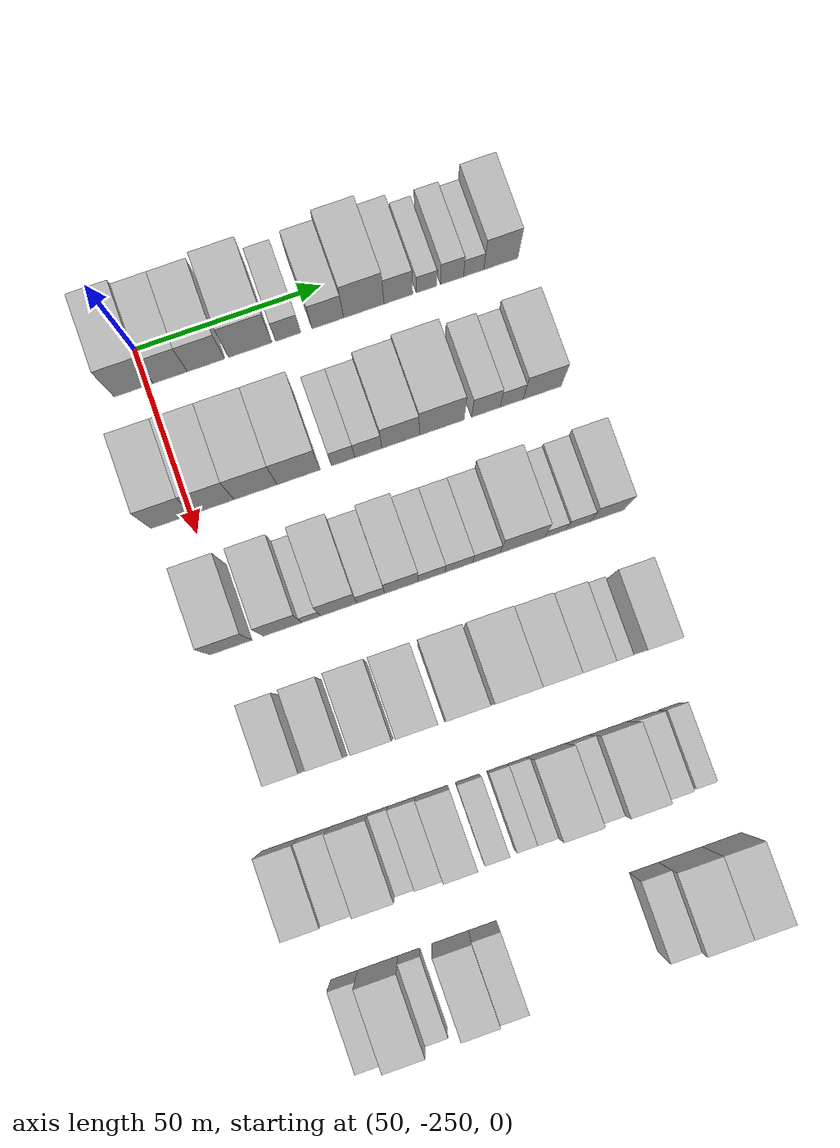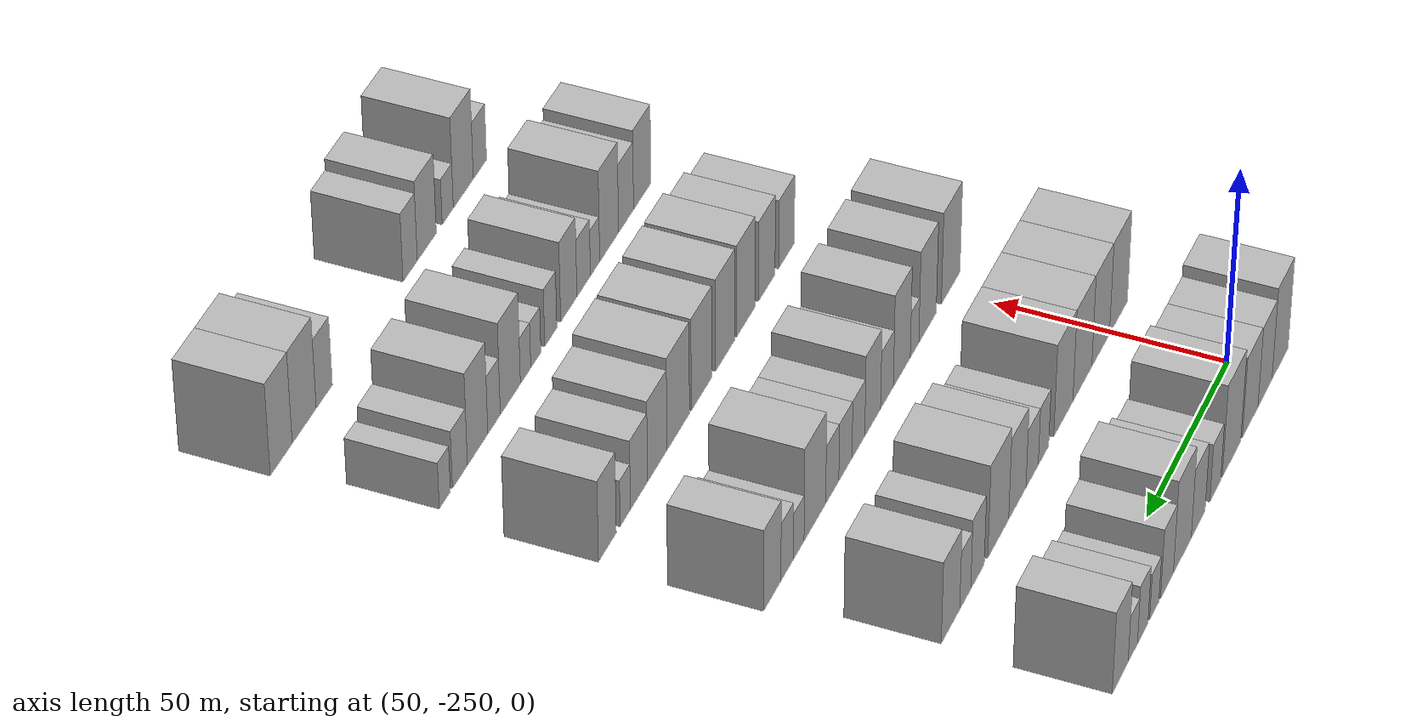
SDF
<sdf version="1.6">
 <world name="default">
  <model name="building_34">
   <static>1</static>
   <pose>50.0000 -253.4260 0 0.000000 0.000000 0.000000</pose>
   <link name="link">
    <pose>0 0 12.00 0 0 0</pose>
    <collision name="collision"><geometry><box><size>20.0000 10.4956 24.0000</size></box></geometry></collision>
    <visual name="visual">
     <cast_shadows>0</cast_shadows>
     <geometry><box><size>20.0000 10.4956 24.0000</size></box></geometry>
     <material>
      <script>
       <uri>model://HANNAS_wall/materials/scripts</uri>
       <uri>model://HANNAS_wall/materials/textures</uri>
       <name>vrc/HANNAS_wall</name>
      </script>
     </material>
    </visual>
   </link>
  </model>
  <model name="building_35">
   <static>1</static>
   <pose>50.0000 -243.6366 0 0.000000 0.000000 0.000000</pose>
   <link name="link">
    <pose>0 0 10.50 0 0 0</pose>
    <collision name="collision"><geometry><box><size>20.0000 9.0833 21.0000</size></box></geometry></collision>
    <visual name="visual">
     <cast_shadows>0</cast_shadows>
     <geometry><box><size>20.0000 9.0833 21.0000</size></box></geometry>
     <material>
      <script>
       <uri>model://HANNAS_wall/materials/scripts</uri>
       <uri>model://HANNAS_wall/materials/textures</uri>
       <name>vrc/HANNAS_wall</name>
      </script>
     </material>
    </visual>
   </link>
  </model>
  <model name="building_36">
   <static>1</static>
   <pose>50.0000 -234.0898 0 0.000000 0.000000 0.000000</pose>
   <link name="link">
    <pose>0 0 10.50 0 0 0</pose>
    <collision name="collision"><geometry><box><size>20.0000 10.0101 21.0000</size></box></geometry></collision>
    <visual name="visual">
     <cast_shadows>0</cast_shadows>
     <geometry><box><size>20.0000 10.0101 21.0000</size></box></geometry>
     <material>
      <script>
       <uri>model://HANNAS_wall/materials/scripts</uri>
       <uri>model://HANNAS_wall/materials/textures</uri>
       <name>vrc/HANNAS_wall</name>
      </script>
     </material>
    </visual>
   </link>
  </model>
  <model name="building_37">
   <static>1</static>
   <pose>50.0000 -222.2601 0 0.000000 0.000000 0.000000</pose>
   <link name="link">
    <pose>0 0 12.00 0 0 0</pose>
    <collision name="collision"><geometry><box><size>20.0000 11.6494 24.0000</size></box></geometry></collision>
    <visual name="visual">
     <cast_shadows>0</cast_shadows>
     <geometry><box><size>20.0000 11.6494 24.0000</size></box></geometry>
     <material>
      <script>
       <uri>model://HANNAS_wall/materials/scripts</uri>
       <uri>model://HANNAS_wall/materials/textures</uri>
       <name>vrc/HANNAS_wall</name>
      </script>
     </material>
    </visual>
   </link>
  </model>
  <model name="building_38">
   <static>1</static>
   <pose>50.0000 -212.0708 0 0.000000 0.000000 0.000000</pose>
   <link name="link">
    <pose>0 0 7.50 0 0 0</pose>
    <collision name="collision"><geometry><box><size>20.0000 6.7291 15.0000</size></box></geometry></collision>
    <visual name="visual">
     <cast_shadows>0</cast_shadows>
     <geometry><box><size>20.0000 6.7291 15.0000</size></box></geometry>
     <material>
      <script>
       <uri>model://HANNAS_wall/materials/scripts</uri>
       <uri>model://HANNAS_wall/materials/textures</uri>
       <name>vrc/HANNAS_wall</name>
      </script>
     </material>
    </visual>
   </link>
  </model>
  <model name="building_39">
   <static>1</static>
   <pose>50.0000 -201.4564 0 0.000000 0.000000 0.000000</pose>
   <link name="link">
    <pose>0 0 9.00 0 0 0</pose>
    <collision name="collision"><geometry><box><size>20.0000 8.4998 18.0000</size></box></geometry></collision>
    <visual name="visual">
     <cast_shadows>0</cast_shadows>
     <geometry><box><size>20.0000 8.4998 18.0000</size></box></geometry>
     <material>
      <script>
       <uri>model://HANNAS_wall/materials/scripts</uri>
       <uri>model://HANNAS_wall/materials/textures</uri>
       <name>vrc/HANNAS_wall</name>
      </script>
     </material>
    </visual>
   </link>
  </model>
  <model name="building_40">
   <static>1</static>
   <pose>50.0000 -191.7724 0 0.000000 0.000000 0.000000</pose>
   <link name="link">
    <pose>0 0 12.00 0 0 0</pose>
    <collision name="collision"><geometry><box><size>20.0000 10.8682 24.0000</size></box></geometry></collision>
    <visual name="visual">
     <cast_shadows>0</cast_shadows>
     <geometry><box><size>20.0000 10.8682 24.0000</size></box></geometry>
     <material>
      <script>
       <uri>model://HANNAS_wall/materials/scripts</uri>
       <uri>model://HANNAS_wall/materials/textures</uri>
       <name>vrc/HANNAS_wall</name>
      </script>
     </material>
    </visual>
   </link>
  </model>
  <model name="building_41">
   <static>1</static>
   <pose>50.0000 -182.4763 0 0.000000 0.000000 0.000000</pose>
   <link name="link">
    <pose>0 0 9.00 0 0 0</pose>
    <collision name="collision"><geometry><box><size>20.0000 7.7241 18.0000</size></box></geometry></collision>
    <visual name="visual">
     <cast_shadows>0</cast_shadows>
     <geometry><box><size>20.0000 7.7241 18.0000</size></box></geometry>
     <material>
      <script>
       <uri>model://HANNAS_wall/materials/scripts</uri>
       <uri>model://HANNAS_wall/materials/textures</uri>
       <name>vrc/HANNAS_wall</name>
      </script>
     </material>
    </visual>
   </link>
  </model>
  <model name="building_42">
   <static>1</static>
   <pose>50.0000 -174.8510 0 0.000000 0.000000 0.000000</pose>
   <link name="link">
    <pose>0 0 6.00 0 0 0</pose>
    <collision name="collision"><geometry><box><size>20.0000 5.5265 12.0000</size></box></geometry></collision>
    <visual name="visual">
     <cast_shadows>0</cast_shadows>
     <geometry><box><size>20.0000 5.5265 12.0000</size></box></geometry>
     <material>
      <script>
       <uri>model://HANNAS_wall/materials/scripts</uri>
       <uri>model://HANNAS_wall/materials/textures</uri>
       <name>vrc/HANNAS_wall</name>
      </script>
     </material>
    </visual>
   </link>
  </model>
  <model name="building_43">
   <static>1</static>
   <pose>50.0000 -167.9820 0 0.000000 0.000000 0.000000</pose>
   <link name="link">
    <pose>0 0 7.50 0 0 0</pose>
    <collision name="collision"><geometry><box><size>20.0000 6.2115 15.0000</size></box></geometry></collision>
    <visual name="visual">
     <cast_shadows>0</cast_shadows>
     <geometry><box><size>20.0000 6.2115 15.0000</size></box></geometry>
     <material>
      <script>
       <uri>model://HANNAS_wall/materials/scripts</uri>
       <uri>model://HANNAS_wall/materials/textures</uri>
       <name>vrc/HANNAS_wall</name>
      </script>
     </material>
    </visual>
   </link>
  </model>
  <model name="building_44">
   <static>1</static>
   <pose>50.0000 -162.1305 0 0.000000 0.000000 0.000000</pose>
   <link name="link">
    <pose>0 0 6.00 0 0 0</pose>
    <collision name="collision"><geometry><box><size>20.0000 5.4915 12.0000</size></box></geometry></collision>
    <visual name="visual">
     <cast_shadows>0</cast_shadows>
     <geometry><box><size>20.0000 5.4915 12.0000</size></box></geometry>
     <material>
      <script>
       <uri>model://HANNAS_wall/materials/scripts</uri>
       <uri>model://HANNAS_wall/materials/textures</uri>
       <name>vrc/HANNAS_wall</name>
      </script>
     </material>
    </visual>
   </link>
  </model>
  <model name="building_45">
   <static>1</static>
   <pose>50.0000 -154.7492 0 0.000000 0.000000 0.000000</pose>
   <link name="link">
    <pose>0 0 10.50 0 0 0</pose>
    <collision name="collision"><geometry><box><size>20.0000 9.2712 21.0000</size></box></geometry></collision>
    <visual name="visual">
     <cast_shadows>0</cast_shadows>
     <geometry><box><size>20.0000 9.2712 21.0000</size></box></geometry>
     <material>
      <script>
       <uri>model://HANNAS_wall/materials/scripts</uri>
       <uri>model://HANNAS_wall/materials/textures</uri>
       <name>vrc/HANNAS_wall</name>
      </script>
     </material>
    </visual>
   </link>
  </model>
  <model name="building_167">
   <static>1</static>
   <pose>85.0000 -254.9216 0 0.000000 0.000000 0.000000</pose>
   <link name="link">
    <pose>0 0 12.00 0 0 0</pose>
    <collision name="collision"><geometry><box><size>20.0000 11.1093 24.0000</size></box></geometry></collision>
    <visual name="visual">
     <cast_shadows>0</cast_shadows>
     <geometry><box><size>20.0000 11.1093 24.0000</size></box></geometry>
     <material>
      <script>
       <uri>model://HANNAS_wall/materials/scripts</uri>
       <uri>model://HANNAS_wall/materials/textures</uri>
       <name>vrc/HANNAS_wall</name>
      </script>
     </material>
    </visual>
   </link>
  </model>
  <model name="building_168">
   <static>1</static>
   <pose>85.0000 -243.9283 0 0.000000 0.000000 0.000000</pose>
   <link name="link">
    <pose>0 0 12.00 0 0 0</pose>
    <collision name="collision"><geometry><box><size>20.0000 10.8771 24.0000</size></box></geometry></collision>
    <visual name="visual">
     <cast_shadows>0</cast_shadows>
     <geometry><box><size>20.0000 10.8771 24.0000</size></box></geometry>
     <material>
      <script>
       <uri>model://HANNAS_wall/materials/scripts</uri>
       <uri>model://HANNAS_wall/materials/textures</uri>
       <name>vrc/HANNAS_wall</name>
      </script>
     </material>
    </visual>
   </link>
  </model>
  <model name="building_169">
   <static>1</static>
   <pose>85.0000 -232.7500 0 0.000000 0.000000 0.000000</pose>
   <link name="link">
    <pose>0 0 12.00 0 0 0</pose>
    <collision name="collision"><geometry><box><size>20.0000 11.4796 24.0000</size></box></geometry></collision>
    <visual name="visual">
     <cast_shadows>0</cast_shadows>
     <geometry><box><size>20.0000 11.4796 24.0000</size></box></geometry>
     <material>
      <script>
       <uri>model://HANNAS_wall/materials/scripts</uri>
       <uri>model://HANNAS_wall/materials/textures</uri>
       <name>vrc/HANNAS_wall</name>
      </script>
     </material>
    </visual>
   </link>
  </model>
  <model name="building_170">
   <static>1</static>
   <pose>85.0000 -221.2790 0 0.000000 0.000000 0.000000</pose>
   <link name="link">
    <pose>0 0 12.00 0 0 0</pose>
    <collision name="collision"><geometry><box><size>20.0000 11.4623 24.0000</size></box></geometry></collision>
    <visual name="visual">
     <cast_shadows>0</cast_shadows>
     <geometry><box><size>20.0000 11.4623 24.0000</size></box></geometry>
     <material>
      <script>
       <uri>model://HANNAS_wall/materials/scripts</uri>
       <uri>model://HANNAS_wall/materials/textures</uri>
       <name>vrc/HANNAS_wall</name>
      </script>
     </material>
    </visual>
   </link>
  </model>
  <model name="building_171">
   <static>1</static>
   <pose>85.0000 -209.4614 0 0.000000 0.000000 0.000000</pose>
   <link name="link">
    <pose>0 0 7.50 0 0 0</pose>
    <collision name="collision"><geometry><box><size>20.0000 6.1730 15.0000</size></box></geometry></collision>
    <visual name="visual">
     <cast_shadows>0</cast_shadows>
     <geometry><box><size>20.0000 6.1730 15.0000</size></box></geometry>
     <material>
      <script>
       <uri>model://HANNAS_wall/materials/scripts</uri>
       <uri>model://HANNAS_wall/materials/textures</uri>
       <name>vrc/HANNAS_wall</name>
      </script>
     </material>
    </visual>
   </link>
  </model>
  <model name="building_172">
   <static>1</static>
   <pose>85.0000 -202.7661 0 0.000000 0.000000 0.000000</pose>
   <link name="link">
    <pose>0 0 7.50 0 0 0</pose>
    <collision name="collision"><geometry><box><size>20.0000 7.2175 15.0000</size></box></geometry></collision>
    <visual name="visual">
     <cast_shadows>0</cast_shadows>
     <geometry><box><size>20.0000 7.2175 15.0000</size></box></geometry>
     <material>
      <script>
       <uri>model://HANNAS_wall/materials/scripts</uri>
       <uri>model://HANNAS_wall/materials/textures</uri>
       <name>vrc/HANNAS_wall</name>
      </script>
     </material>
    </visual>
   </link>
  </model>
  <model name="building_173">
   <static>1</static>
   <pose>85.0000 -194.1441 0 0.000000 0.000000 0.000000</pose>
   <link name="link">
    <pose>0 0 10.50 0 0 0</pose>
    <collision name="collision"><geometry><box><size>20.0000 10.0264 21.0000</size></box></geometry></collision>
    <visual name="visual">
     <cast_shadows>0</cast_shadows>
     <geometry><box><size>20.0000 10.0264 21.0000</size></box></geometry>
     <material>
      <script>
       <uri>model://HANNAS_wall/materials/scripts</uri>
       <uri>model://HANNAS_wall/materials/textures</uri>
       <name>vrc/HANNAS_wall</name>
      </script>
     </material>
    </visual>
   </link>
  </model>
  <model name="building_174">
   <static>1</static>
   <pose>85.0000 -183.1350 0 0.000000 0.000000 0.000000</pose>
   <link name="link">
    <pose>0 0 12.00 0 0 0</pose>
    <collision name="collision"><geometry><box><size>20.0000 11.9917 24.0000</size></box></geometry></collision>
    <visual name="visual">
     <cast_shadows>0</cast_shadows>
     <geometry><box><size>20.0000 11.9917 24.0000</size></box></geometry>
     <material>
      <script>
       <uri>model://HANNAS_wall/materials/scripts</uri>
       <uri>model://HANNAS_wall/materials/textures</uri>
       <name>vrc/HANNAS_wall</name>
      </script>
     </material>
    </visual>
   </link>
  </model>
  <model name="building_175">
   <static>1</static>
   <pose>85.0000 -171.3120 0 0.000000 0.000000 0.000000</pose>
   <link name="link">
    <pose>0 0 9.00 0 0 0</pose>
    <collision name="collision"><geometry><box><size>20.0000 7.6543 18.0000</size></box></geometry></collision>
    <visual name="visual">
     <cast_shadows>0</cast_shadows>
     <geometry><box><size>20.0000 7.6543 18.0000</size></box></geometry>
     <material>
      <script>
       <uri>model://HANNAS_wall/materials/scripts</uri>
       <uri>model://HANNAS_wall/materials/textures</uri>
       <name>vrc/HANNAS_wall</name>
      </script>
     </material>
    </visual>
   </link>
  </model>
  <model name="building_176">
   <static>1</static>
   <pose>85.0000 -164.3935 0 0.000000 0.000000 0.000000</pose>
   <link name="link">
    <pose>0 0 7.50 0 0 0</pose>
    <collision name="collision"><geometry><box><size>20.0000 6.1828 15.0000</size></box></geometry></collision>
    <visual name="visual">
     <cast_shadows>0</cast_shadows>
     <geometry><box><size>20.0000 6.1828 15.0000</size></box></geometry>
     <material>
      <script>
       <uri>model://HANNAS_wall/materials/scripts</uri>
       <uri>model://HANNAS_wall/materials/textures</uri>
       <name>vrc/HANNAS_wall</name>
      </script>
     </material>
    </visual>
   </link>
  </model>
  <model name="building_177">
   <static>1</static>
   <pose>85.0000 -156.1910 0 0.000000 0.000000 0.000000</pose>
   <link name="link">
    <pose>0 0 10.50 0 0 0</pose>
    <collision name="collision"><geometry><box><size>20.0000 10.2220 21.0000</size></box></geometry></collision>
    <visual name="visual">
     <cast_shadows>0</cast_shadows>
     <geometry><box><size>20.0000 10.2220 21.0000</size></box></geometry>
     <material>
      <script>
       <uri>model://HANNAS_wall/materials/scripts</uri>
       <uri>model://HANNAS_wall/materials/textures</uri>
       <name>vrc/HANNAS_wall</name>
      </script>
     </material>
    </visual>
   </link>
  </model>
  <model name="building_286">
   <static>1</static>
   <pose>120.0000 -251.1077 0 0.000000 0.000000 0.000000</pose>
   <link name="link">
    <pose>0 0 12.00 0 0 0</pose>
    <collision name="collision"><geometry><box><size>20.0000 10.9994 24.0000</size></box></geometry></collision>
    <visual name="visual">
     <cast_shadows>0</cast_shadows>
     <geometry><box><size>20.0000 10.9994 24.0000</size></box></geometry>
     <material>
      <script>
       <uri>model://HANNAS_wall/materials/scripts</uri>
       <uri>model://HANNAS_wall/materials/textures</uri>
       <name>vrc/HANNAS_wall</name>
      </script>
     </material>
    </visual>
   </link>
  </model>
  <model name="building_287">
   <static>1</static>
   <pose>120.0000 -237.5318 0 0.000000 0.000000 0.000000</pose>
   <link name="link">
    <pose>0 0 12.00 0 0 0</pose>
    <collision name="collision"><geometry><box><size>20.0000 10.1524 24.0000</size></box></geometry></collision>
    <visual name="visual">
     <cast_shadows>0</cast_shadows>
     <geometry><box><size>20.0000 10.1524 24.0000</size></box></geometry>
     <material>
      <script>
       <uri>model://HANNAS_wall/materials/scripts</uri>
       <uri>model://HANNAS_wall/materials/textures</uri>
       <name>vrc/HANNAS_wall</name>
      </script>
     </material>
    </visual>
   </link>
  </model>
  <model name="building_288">
   <static>1</static>
   <pose>120.0000 -229.9847 0 0.000000 0.000000 0.000000</pose>
   <link name="link">
    <pose>0 0 6.00 0 0 0</pose>
    <collision name="collision"><geometry><box><size>20.0000 4.9419 12.0000</size></box></geometry></collision>
    <visual name="visual">
     <cast_shadows>0</cast_shadows>
     <geometry><box><size>20.0000 4.9419 12.0000</size></box></geometry>
     <material>
      <script>
       <uri>model://HANNAS_wall/materials/scripts</uri>
       <uri>model://HANNAS_wall/materials/textures</uri>
       <name>vrc/HANNAS_wall</name>
      </script>
     </material>
    </visual>
   </link>
  </model>
  <model name="building_289">
   <static>1</static>
   <pose>120.0000 -222.6687 0 0.000000 0.000000 0.000000</pose>
   <link name="link">
    <pose>0 0 12.00 0 0 0</pose>
    <collision name="collision"><geometry><box><size>20.0000 9.6901 24.0000</size></box></geometry></collision>
    <visual name="visual">
     <cast_shadows>0</cast_shadows>
     <geometry><box><size>20.0000 9.6901 24.0000</size></box></geometry>
     <material>
      <script>
       <uri>model://HANNAS_wall/materials/scripts</uri>
       <uri>model://HANNAS_wall/materials/textures</uri>
       <name>vrc/HANNAS_wall</name>
      </script>
     </material>
    </visual>
   </link>
  </model>
  <model name="building_290">
   <static>1</static>
   <pose>120.0000 -214.1934 0 0.000000 0.000000 0.000000</pose>
   <link name="link">
    <pose>0 0 7.50 0 0 0</pose>
    <collision name="collision"><geometry><box><size>20.0000 7.2606 15.0000</size></box></geometry></collision>
    <visual name="visual">
     <cast_shadows>0</cast_shadows>
     <geometry><box><size>20.0000 7.2606 15.0000</size></box></geometry>
     <material>
      <script>
       <uri>model://HANNAS_wall/materials/scripts</uri>
       <uri>model://HANNAS_wall/materials/textures</uri>
       <name>vrc/HANNAS_wall</name>
      </script>
     </material>
    </visual>
   </link>
  </model>
  <model name="building_291">
   <static>1</static>
   <pose>120.0000 -206.1366 0 0.000000 0.000000 0.000000</pose>
   <link name="link">
    <pose>0 0 10.50 0 0 0</pose>
    <collision name="collision"><geometry><box><size>20.0000 8.8530 21.0000</size></box></geometry></collision>
    <visual name="visual">
     <cast_shadows>0</cast_shadows>
     <geometry><box><size>20.0000 8.8530 21.0000</size></box></geometry>
     <material>
      <script>
       <uri>model://HANNAS_wall/materials/scripts</uri>
       <uri>model://HANNAS_wall/materials/textures</uri>
       <name>vrc/HANNAS_wall</name>
      </script>
     </material>
    </visual>
   </link>
  </model>
  <model name="building_292">
   <static>1</static>
   <pose>120.0000 -198.1510 0 0.000000 0.000000 0.000000</pose>
   <link name="link">
    <pose>0 0 7.50 0 0 0</pose>
    <collision name="collision"><geometry><box><size>20.0000 7.1181 15.0000</size></box></geometry></collision>
    <visual name="visual">
     <cast_shadows>0</cast_shadows>
     <geometry><box><size>20.0000 7.1181 15.0000</size></box></geometry>
     <material>
      <script>
       <uri>model://HANNAS_wall/materials/scripts</uri>
       <uri>model://HANNAS_wall/materials/textures</uri>
       <name>vrc/HANNAS_wall</name>
      </script>
     </material>
    </visual>
   </link>
  </model>
  <model name="building_293">
   <static>1</static>
   <pose>120.0000 -190.9507 0 0.000000 0.000000 0.000000</pose>
   <link name="link">
    <pose>0 0 7.50 0 0 0</pose>
    <collision name="collision"><geometry><box><size>20.0000 7.2825 15.0000</size></box></geometry></collision>
    <visual name="visual">
     <cast_shadows>0</cast_shadows>
     <geometry><box><size>20.0000 7.2825 15.0000</size></box></geometry>
     <material>
      <script>
       <uri>model://HANNAS_wall/materials/scripts</uri>
       <uri>model://HANNAS_wall/materials/textures</uri>
       <name>vrc/HANNAS_wall</name>
      </script>
     </material>
    </visual>
   </link>
  </model>
  <model name="building_294">
   <static>1</static>
   <pose>120.0000 -183.7240 0 0.000000 0.000000 0.000000</pose>
   <link name="link">
    <pose>0 0 7.50 0 0 0</pose>
    <collision name="collision"><geometry><box><size>20.0000 7.1709 15.0000</size></box></geometry></collision>
    <visual name="visual">
     <cast_shadows>0</cast_shadows>
     <geometry><box><size>20.0000 7.1709 15.0000</size></box></geometry>
     <material>
      <script>
       <uri>model://HANNAS_wall/materials/scripts</uri>
       <uri>model://HANNAS_wall/materials/textures</uri>
       <name>vrc/HANNAS_wall</name>
      </script>
     </material>
    </visual>
   </link>
  </model>
  <model name="building_295">
   <static>1</static>
   <pose>120.0000 -174.2726 0 0.000000 0.000000 0.000000</pose>
   <link name="link">
    <pose>0 0 12.00 0 0 0</pose>
    <collision name="collision"><geometry><box><size>20.0000 11.7320 24.0000</size></box></geometry></collision>
    <visual name="visual">
     <cast_shadows>0</cast_shadows>
     <geometry><box><size>20.0000 11.7320 24.0000</size></box></geometry>
     <material>
      <script>
       <uri>model://HANNAS_wall/materials/scripts</uri>
       <uri>model://HANNAS_wall/materials/textures</uri>
       <name>vrc/HANNAS_wall</name>
      </script>
     </material>
    </visual>
   </link>
  </model>
  <model name="building_296">
   <static>1</static>
   <pose>120.0000 -165.5171 0 0.000000 0.000000 0.000000</pose>
   <link name="link">
    <pose>0 0 6.00 0 0 0</pose>
    <collision name="collision"><geometry><box><size>20.0000 5.7790 12.0000</size></box></geometry></collision>
    <visual name="visual">
     <cast_shadows>0</cast_shadows>
     <geometry><box><size>20.0000 5.7790 12.0000</size></box></geometry>
     <material>
      <script>
       <uri>model://HANNAS_wall/materials/scripts</uri>
       <uri>model://HANNAS_wall/materials/textures</uri>
       <name>vrc/HANNAS_wall</name>
      </script>
     </material>
    </visual>
   </link>
  </model>
  <model name="building_297">
   <static>1</static>
   <pose>120.0000 -159.3336 0 0.000000 0.000000 0.000000</pose>
   <link name="link">
    <pose>0 0 7.50 0 0 0</pose>
    <collision name="collision"><geometry><box><size>20.0000 6.5880 15.0000</size></box></geometry></collision>
    <visual name="visual">
     <cast_shadows>0</cast_shadows>
     <geometry><box><size>20.0000 6.5880 15.0000</size></box></geometry>
     <material>
      <script>
       <uri>model://HANNAS_wall/materials/scripts</uri>
       <uri>model://HANNAS_wall/materials/textures</uri>
       <name>vrc/HANNAS_wall</name>
      </script>
     </material>
    </visual>
   </link>
  </model>
  <model name="building_298">
   <static>1</static>
   <pose>120.0000 -151.4785 0 0.000000 0.000000 0.000000</pose>
   <link name="link">
    <pose>0 0 10.50 0 0 0</pose>
    <collision name="collision"><geometry><box><size>20.0000 9.1222 21.0000</size></box></geometry></collision>
    <visual name="visual">
     <cast_shadows>0</cast_shadows>
     <geometry><box><size>20.0000 9.1222 21.0000</size></box></geometry>
     <material>
      <script>
       <uri>model://HANNAS_wall/materials/scripts</uri>
       <uri>model://HANNAS_wall/materials/textures</uri>
       <name>vrc/HANNAS_wall</name>
      </script>
     </material>
    </visual>
   </link>
  </model>
  <model name="building_417">
   <static>1</static>
   <pose>155.0000 -248.2674 0 0.000000 0.000000 0.000000</pose>
   <link name="link">
    <pose>0 0 9.00 0 0 0</pose>
    <collision name="collision"><geometry><box><size>20.0000 8.8972 18.0000</size></box></geometry></collision>
    <visual name="visual">
     <cast_shadows>0</cast_shadows>
     <geometry><box><size>20.0000 8.8972 18.0000</size></box></geometry>
     <material>
      <script>
       <uri>model://HANNAS_wall/materials/scripts</uri>
       <uri>model://HANNAS_wall/materials/textures</uri>
       <name>vrc/HANNAS_wall</name>
      </script>
     </material>
    </visual>
   </link>
  </model>
  <model name="building_418">
   <static>1</static>
   <pose>155.0000 -237.1934 0 0.000000 0.000000 0.000000</pose>
   <link name="link">
    <pose>0 0 10.50 0 0 0</pose>
    <collision name="collision"><geometry><box><size>20.0000 9.2507 21.0000</size></box></geometry></collision>
    <visual name="visual">
     <cast_shadows>0</cast_shadows>
     <geometry><box><size>20.0000 9.2507 21.0000</size></box></geometry>
     <material>
      <script>
       <uri>model://HANNAS_wall/materials/scripts</uri>
       <uri>model://HANNAS_wall/materials/textures</uri>
       <name>vrc/HANNAS_wall</name>
      </script>
     </material>
    </visual>
   </link>
  </model>
  <model name="building_419">
   <static>1</static>
   <pose>155.0000 -225.5393 0 0.000000 0.000000 0.000000</pose>
   <link name="link">
    <pose>0 0 12.00 0 0 0</pose>
    <collision name="collision"><geometry><box><size>20.0000 10.0574 24.0000</size></box></geometry></collision>
    <visual name="visual">
     <cast_shadows>0</cast_shadows>
     <geometry><box><size>20.0000 10.0574 24.0000</size></box></geometry>
     <material>
      <script>
       <uri>model://HANNAS_wall/materials/scripts</uri>
       <uri>model://HANNAS_wall/materials/textures</uri>
       <name>vrc/HANNAS_wall</name>
      </script>
     </material>
    </visual>
   </link>
  </model>
  <model name="building_420">
   <static>1</static>
   <pose>155.0000 -214.3121 0 0.000000 0.000000 0.000000</pose>
   <link name="link">
    <pose>0 0 12.00 0 0 0</pose>
    <collision name="collision"><geometry><box><size>20.0000 10.3968 24.0000</size></box></geometry></collision>
    <visual name="visual">
     <cast_shadows>0</cast_shadows>
     <geometry><box><size>20.0000 10.3968 24.0000</size></box></geometry>
     <material>
      <script>
       <uri>model://HANNAS_wall/materials/scripts</uri>
       <uri>model://HANNAS_wall/materials/textures</uri>
       <name>vrc/HANNAS_wall</name>
      </script>
     </material>
    </visual>
   </link>
  </model>
  <model name="building_421">
   <static>1</static>
   <pose>155.0000 -201.6252 0 0.000000 0.000000 0.000000</pose>
   <link name="link">
    <pose>0 0 12.00 0 0 0</pose>
    <collision name="collision"><geometry><box><size>20.0000 10.9772 24.0000</size></box></geometry></collision>
    <visual name="visual">
     <cast_shadows>0</cast_shadows>
     <geometry><box><size>20.0000 10.9772 24.0000</size></box></geometry>
     <material>
      <script>
       <uri>model://HANNAS_wall/materials/scripts</uri>
       <uri>model://HANNAS_wall/materials/textures</uri>
       <name>vrc/HANNAS_wall</name>
      </script>
     </material>
    </visual>
   </link>
  </model>
  <model name="building_422">
   <static>1</static>
   <pose>155.0000 -189.2164 0 0.000000 0.000000 0.000000</pose>
   <link name="link">
    <pose>0 0 12.00 0 0 0</pose>
    <collision name="collision"><geometry><box><size>20.0000 11.8404 24.0000</size></box></geometry></collision>
    <visual name="visual">
     <cast_shadows>0</cast_shadows>
     <geometry><box><size>20.0000 11.8404 24.0000</size></box></geometry>
     <material>
      <script>
       <uri>model://HANNAS_wall/materials/scripts</uri>
       <uri>model://HANNAS_wall/materials/textures</uri>
       <name>vrc/HANNAS_wall</name>
      </script>
     </material>
    </visual>
   </link>
  </model>
  <model name="building_423">
   <static>1</static>
   <pose>155.0000 -178.2266 0 0.000000 0.000000 0.000000</pose>
   <link name="link">
    <pose>0 0 10.50 0 0 0</pose>
    <collision name="collision"><geometry><box><size>20.0000 10.1391 21.0000</size></box></geometry></collision>
    <visual name="visual">
     <cast_shadows>0</cast_shadows>
     <geometry><box><size>20.0000 10.1391 21.0000</size></box></geometry>
     <material>
      <script>
       <uri>model://HANNAS_wall/materials/scripts</uri>
       <uri>model://HANNAS_wall/materials/textures</uri>
       <name>vrc/HANNAS_wall</name>
      </script>
     </material>
    </visual>
   </link>
  </model>
  <model name="building_424">
   <static>1</static>
   <pose>155.0000 -168.7325 0 0.000000 0.000000 0.000000</pose>
   <link name="link">
    <pose>0 0 9.00 0 0 0</pose>
    <collision name="collision"><geometry><box><size>20.0000 8.8491 18.0000</size></box></geometry></collision>
    <visual name="visual">
     <cast_shadows>0</cast_shadows>
     <geometry><box><size>20.0000 8.8491 18.0000</size></box></geometry>
     <material>
      <script>
       <uri>model://HANNAS_wall/materials/scripts</uri>
       <uri>model://HANNAS_wall/materials/textures</uri>
       <name>vrc/HANNAS_wall</name>
      </script>
     </material>
    </visual>
   </link>
  </model>
  <model name="building_425">
   <static>1</static>
   <pose>155.0000 -161.6723 0 0.000000 0.000000 0.000000</pose>
   <link name="link">
    <pose>0 0 6.00 0 0 0</pose>
    <collision name="collision"><geometry><box><size>20.0000 5.2713 12.0000</size></box></geometry></collision>
    <visual name="visual">
     <cast_shadows>0</cast_shadows>
     <geometry><box><size>20.0000 5.2713 12.0000</size></box></geometry>
     <material>
      <script>
       <uri>model://HANNAS_wall/materials/scripts</uri>
       <uri>model://HANNAS_wall/materials/textures</uri>
       <name>vrc/HANNAS_wall</name>
      </script>
     </material>
    </visual>
   </link>
  </model>
  <model name="building_426">
   <static>1</static>
   <pose>155.0000 -152.5314 0 0.000000 0.000000 0.000000</pose>
   <link name="link">
    <pose>0 0 10.50 0 0 0</pose>
    <collision name="collision"><geometry><box><size>20.0000 9.0105 21.0000</size></box></geometry></collision>
    <visual name="visual">
     <cast_shadows>0</cast_shadows>
     <geometry><box><size>20.0000 9.0105 21.0000</size></box></geometry>
     <material>
      <script>
       <uri>model://HANNAS_wall/materials/scripts</uri>
       <uri>model://HANNAS_wall/materials/textures</uri>
       <name>vrc/HANNAS_wall</name>
      </script>
     </material>
    </visual>
   </link>
  </model>
  <model name="building_550">
   <static>1</static>
   <pose>190.0000 -255.1554 0 0.000000 0.000000 0.000000</pose>
   <link name="link">
    <pose>0 0 10.50 0 0 0</pose>
    <collision name="collision"><geometry><box><size>20.0000 9.4958 21.0000</size></box></geometry></collision>
    <visual name="visual">
     <cast_shadows>0</cast_shadows>
     <geometry><box><size>20.0000 9.4958 21.0000</size></box></geometry>
     <material>
      <script>
       <uri>model://HANNAS_wall/materials/scripts</uri>
       <uri>model://HANNAS_wall/materials/textures</uri>
       <name>vrc/HANNAS_wall</name>
      </script>
     </material>
    </visual>
   </link>
  </model>
  <model name="building_551">
   <static>1</static>
   <pose>190.0000 -246.3745 0 0.000000 0.000000 0.000000</pose>
   <link name="link">
    <pose>0 0 9.00 0 0 0</pose>
    <collision name="collision"><geometry><box><size>20.0000 8.0659 18.0000</size></box></geometry></collision>
    <visual name="visual">
     <cast_shadows>0</cast_shadows>
     <geometry><box><size>20.0000 8.0659 18.0000</size></box></geometry>
     <material>
      <script>
       <uri>model://HANNAS_wall/materials/scripts</uri>
       <uri>model://HANNAS_wall/materials/textures</uri>
       <name>vrc/HANNAS_wall</name>
      </script>
     </material>
    </visual>
   </link>
  </model>
  <model name="building_552">
   <static>1</static>
   <pose>190.0000 -237.2762 0 0.000000 0.000000 0.000000</pose>
   <link name="link">
    <pose>0 0 12.00 0 0 0</pose>
    <collision name="collision"><geometry><box><size>20.0000 10.1307 24.0000</size></box></geometry></collision>
    <visual name="visual">
     <cast_shadows>0</cast_shadows>
     <geometry><box><size>20.0000 10.1307 24.0000</size></box></geometry>
     <material>
      <script>
       <uri>model://HANNAS_wall/materials/scripts</uri>
       <uri>model://HANNAS_wall/materials/textures</uri>
       <name>vrc/HANNAS_wall</name>
      </script>
     </material>
    </visual>
   </link>
  </model>
  <model name="building_553">
   <static>1</static>
   <pose>190.0000 -229.7337 0 0.000000 0.000000 0.000000</pose>
   <link name="link">
    <pose>0 0 6.00 0 0 0</pose>
    <collision name="collision"><geometry><box><size>20.0000 4.9544 12.0000</size></box></geometry></collision>
    <visual name="visual">
     <cast_shadows>0</cast_shadows>
     <geometry><box><size>20.0000 4.9544 12.0000</size></box></geometry>
     <material>
      <script>
       <uri>model://HANNAS_wall/materials/scripts</uri>
       <uri>model://HANNAS_wall/materials/textures</uri>
       <name>vrc/HANNAS_wall</name>
      </script>
     </material>
    </visual>
   </link>
  </model>
  <model name="building_554">
   <static>1</static>
   <pose>190.0000 -223.6989 0 0.000000 0.000000 0.000000</pose>
   <link name="link">
    <pose>0 0 7.50 0 0 0</pose>
    <collision name="collision"><geometry><box><size>20.0000 7.1153 15.0000</size></box></geometry></collision>
    <visual name="visual">
     <cast_shadows>0</cast_shadows>
     <geometry><box><size>20.0000 7.1153 15.0000</size></box></geometry>
     <material>
      <script>
       <uri>model://HANNAS_wall/materials/scripts</uri>
       <uri>model://HANNAS_wall/materials/textures</uri>
       <name>vrc/HANNAS_wall</name>
      </script>
     </material>
    </visual>
   </link>
  </model>
  <model name="building_555">
   <static>1</static>
   <pose>190.0000 -215.8935 0 0.000000 0.000000 0.000000</pose>
   <link name="link">
    <pose>0 0 10.50 0 0 0</pose>
    <collision name="collision"><geometry><box><size>20.0000 8.4954 21.0000</size></box></geometry></collision>
    <visual name="visual">
     <cast_shadows>0</cast_shadows>
     <geometry><box><size>20.0000 8.4954 21.0000</size></box></geometry>
     <material>
      <script>
       <uri>model://HANNAS_wall/materials/scripts</uri>
       <uri>model://HANNAS_wall/materials/textures</uri>
       <name>vrc/HANNAS_wall</name>
      </script>
     </material>
    </visual>
   </link>
  </model>
  <model name="building_556">
   <static>1</static>
   <pose>190.0000 -206.5189 0 0.000000 0.000000 0.000000</pose>
   <link name="link">
    <pose>0 0 7.50 0 0 0</pose>
    <collision name="collision"><geometry><box><size>20.0000 6.2538 15.0000</size></box></geometry></collision>
    <visual name="visual">
     <cast_shadows>0</cast_shadows>
     <geometry><box><size>20.0000 6.2538 15.0000</size></box></geometry>
     <material>
      <script>
       <uri>model://HANNAS_wall/materials/scripts</uri>
       <uri>model://HANNAS_wall/materials/textures</uri>
       <name>vrc/HANNAS_wall</name>
      </script>
     </material>
    </visual>
   </link>
  </model>
  <model name="building_557">
   <static>1</static>
   <pose>190.0000 -198.7965 0 0.000000 0.000000 0.000000</pose>
   <link name="link">
    <pose>0 0 6.00 0 0 0</pose>
    <collision name="collision"><geometry><box><size>20.0000 5.1911 12.0000</size></box></geometry></collision>
    <visual name="visual">
     <cast_shadows>0</cast_shadows>
     <geometry><box><size>20.0000 5.1911 12.0000</size></box></geometry>
     <material>
      <script>
       <uri>model://HANNAS_wall/materials/scripts</uri>
       <uri>model://HANNAS_wall/materials/textures</uri>
       <name>vrc/HANNAS_wall</name>
      </script>
     </material>
    </visual>
   </link>
  </model>
  <model name="building_558">
   <static>1</static>
   <pose>190.0000 -193.5592 0 0.000000 0.000000 0.000000</pose>
   <link name="link">
    <pose>0 0 6.00 0 0 0</pose>
    <collision name="collision"><geometry><box><size>20.0000 5.2834 12.0000</size></box></geometry></collision>
    <visual name="visual">
     <cast_shadows>0</cast_shadows>
     <geometry><box><size>20.0000 5.2834 12.0000</size></box></geometry>
     <material>
      <script>
       <uri>model://HANNAS_wall/materials/scripts</uri>
       <uri>model://HANNAS_wall/materials/textures</uri>
       <name>vrc/HANNAS_wall</name>
      </script>
     </material>
    </visual>
   </link>
  </model>
  <model name="building_559">
   <static>1</static>
   <pose>190.0000 -185.8456 0 0.000000 0.000000 0.000000</pose>
   <link name="link">
    <pose>0 0 12.00 0 0 0</pose>
    <collision name="collision"><geometry><box><size>20.0000 10.1438 24.0000</size></box></geometry></collision>
    <visual name="visual">
     <cast_shadows>0</cast_shadows>
     <geometry><box><size>20.0000 10.1438 24.0000</size></box></geometry>
     <material>
      <script>
       <uri>model://HANNAS_wall/materials/scripts</uri>
       <uri>model://HANNAS_wall/materials/textures</uri>
       <name>vrc/HANNAS_wall</name>
      </script>
     </material>
    </visual>
   </link>
  </model>
  <model name="building_560">
   <static>1</static>
   <pose>190.0000 -177.6545 0 0.000000 0.000000 0.000000</pose>
   <link name="link">
    <pose>0 0 7.50 0 0 0</pose>
    <collision name="collision"><geometry><box><size>20.0000 6.2384 15.0000</size></box></geometry></collision>
    <visual name="visual">
     <cast_shadows>0</cast_shadows>
     <geometry><box><size>20.0000 6.2384 15.0000</size></box></geometry>
     <material>
      <script>
       <uri>model://HANNAS_wall/materials/scripts</uri>
       <uri>model://HANNAS_wall/materials/textures</uri>
       <name>vrc/HANNAS_wall</name>
      </script>
     </material>
    </visual>
   </link>
  </model>
  <model name="building_561">
   <static>1</static>
   <pose>190.0000 -169.4686 0 0.000000 0.000000 0.000000</pose>
   <link name="link">
    <pose>0 0 12.00 0 0 0</pose>
    <collision name="collision"><geometry><box><size>20.0000 10.1332 24.0000</size></box></geometry></collision>
    <visual name="visual">
     <cast_shadows>0</cast_shadows>
     <geometry><box><size>20.0000 10.1332 24.0000</size></box></geometry>
     <material>
      <script>
       <uri>model://HANNAS_wall/materials/scripts</uri>
       <uri>model://HANNAS_wall/materials/textures</uri>
       <name>vrc/HANNAS_wall</name>
      </script>
     </material>
    </visual>
   </link>
  </model>
  <model name="building_562">
   <static>1</static>
   <pose>190.0000 -160.7236 0 0.000000 0.000000 0.000000</pose>
   <link name="link">
    <pose>0 0 7.50 0 0 0</pose>
    <collision name="collision"><geometry><box><size>20.0000 7.3569 15.0000</size></box></geometry></collision>
    <visual name="visual">
     <cast_shadows>0</cast_shadows>
     <geometry><box><size>20.0000 7.3569 15.0000</size></box></geometry>
     <material>
      <script>
       <uri>model://HANNAS_wall/materials/scripts</uri>
       <uri>model://HANNAS_wall/materials/textures</uri>
       <name>vrc/HANNAS_wall</name>
      </script>
     </material>
    </visual>
   </link>
  </model>
  <model name="building_563">
   <static>1</static>
   <pose>190.0000 -153.3329 0 0.000000 0.000000 0.000000</pose>
   <link name="link">
    <pose>0 0 6.00 0 0 0</pose>
    <collision name="collision"><geometry><box><size>20.0000 5.4244 12.0000</size></box></geometry></collision>
    <visual name="visual">
     <cast_shadows>0</cast_shadows>
     <geometry><box><size>20.0000 5.4244 12.0000</size></box></geometry>
     <material>
      <script>
       <uri>model://HANNAS_wall/materials/scripts</uri>
       <uri>model://HANNAS_wall/materials/textures</uri>
       <name>vrc/HANNAS_wall</name>
      </script>
     </material>
    </visual>
   </link>
  </model>
  <model name="building_678">
   <static>1</static>
   <pose>225.0000 -250.7582 0 0.000000 0.000000 0.000000</pose>
   <link name="link">
    <pose>0 0 7.50 0 0 0</pose>
    <collision name="collision"><geometry><box><size>20.0000 6.9150 15.0000</size></box></geometry></collision>
    <visual name="visual">
     <cast_shadows>0</cast_shadows>
     <geometry><box><size>20.0000 6.9150 15.0000</size></box></geometry>
     <material>
      <script>
       <uri>model://HANNAS_wall/materials/scripts</uri>
       <uri>model://HANNAS_wall/materials/textures</uri>
       <name>vrc/HANNAS_wall</name>
      </script>
     </material>
    </visual>
   </link>
  </model>
  <model name="building_679">
   <static>1</static>
   <pose>225.0000 -242.1196 0 0.000000 0.000000 0.000000</pose>
   <link name="link">
    <pose>0 0 12.00 0 0 0</pose>
    <collision name="collision"><geometry><box><size>20.0000 10.3623 24.0000</size></box></geometry></collision>
    <visual name="visual">
     <cast_shadows>0</cast_shadows>
     <geometry><box><size>20.0000 10.3623 24.0000</size></box></geometry>
     <material>
      <script>
       <uri>model://HANNAS_wall/materials/scripts</uri>
       <uri>model://HANNAS_wall/materials/textures</uri>
       <name>vrc/HANNAS_wall</name>
      </script>
     </material>
    </visual>
   </link>
  </model>
  <model name="building_680">
   <static>1</static>
   <pose>225.0000 -234.0742 0 0.000000 0.000000 0.000000</pose>
   <link name="link">
    <pose>0 0 6.00 0 0 0</pose>
    <collision name="collision"><geometry><box><size>20.0000 5.7284 12.0000</size></box></geometry></collision>
    <visual name="visual">
     <cast_shadows>0</cast_shadows>
     <geometry><box><size>20.0000 5.7284 12.0000</size></box></geometry>
     <material>
      <script>
       <uri>model://HANNAS_wall/materials/scripts</uri>
       <uri>model://HANNAS_wall/materials/textures</uri>
       <name>vrc/HANNAS_wall</name>
      </script>
     </material>
    </visual>
   </link>
  </model>
  <model name="building_681">
   <static>1</static>
   <pose>225.0000 -223.3918 0 0.000000 0.000000 0.000000</pose>
   <link name="link">
    <pose>0 0 10.50 0 0 0</pose>
    <collision name="collision"><geometry><box><size>20.0000 9.6366 21.0000</size></box></geometry></collision>
    <visual name="visual">
     <cast_shadows>0</cast_shadows>
     <geometry><box><size>20.0000 9.6366 21.0000</size></box></geometry>
     <material>
      <script>
       <uri>model://HANNAS_wall/materials/scripts</uri>
       <uri>model://HANNAS_wall/materials/textures</uri>
       <name>vrc/HANNAS_wall</name>
      </script>
     </material>
    </visual>
   </link>
  </model>
  <model name="building_682">
   <static>1</static>
   <pose>225.0000 -214.9643 0 0.000000 0.000000 0.000000</pose>
   <link name="link">
    <pose>0 0 9.00 0 0 0</pose>
    <collision name="collision"><geometry><box><size>20.0000 7.2183 18.0000</size></box></geometry></collision>
    <visual name="visual">
     <cast_shadows>0</cast_shadows>
     <geometry><box><size>20.0000 7.2183 18.0000</size></box></geometry>
     <material>
      <script>
       <uri>model://HANNAS_wall/materials/scripts</uri>
       <uri>model://HANNAS_wall/materials/textures</uri>
       <name>vrc/HANNAS_wall</name>
      </script>
     </material>
    </visual>
   </link>
  </model>
  <model name="building_683">
   <static>1</static>
   <pose>225.0000 -172.7572 0 0.000000 0.000000 0.000000</pose>
   <link name="link">
    <pose>0 0 9.00 0 0 0</pose>
    <collision name="collision"><geometry><box><size>20.0000 7.7320 18.0000</size></box></geometry></collision>
    <visual name="visual">
     <cast_shadows>0</cast_shadows>
     <geometry><box><size>20.0000 7.7320 18.0000</size></box></geometry>
     <material>
      <script>
       <uri>model://HANNAS_wall/materials/scripts</uri>
       <uri>model://HANNAS_wall/materials/textures</uri>
       <name>vrc/HANNAS_wall</name>
      </script>
     </material>
    </visual>
   </link>
  </model>
  <model name="building_684">
   <static>1</static>
   <pose>225.0000 -163.1895 0 0.000000 0.000000 0.000000</pose>
   <link name="link">
    <pose>0 0 12.00 0 0 0</pose>
    <collision name="collision"><geometry><box><size>20.0000 11.4034 24.0000</size></box></geometry></collision>
    <visual name="visual">
     <cast_shadows>0</cast_shadows>
     <geometry><box><size>20.0000 11.4034 24.0000</size></box></geometry>
     <material>
      <script>
       <uri>model://HANNAS_wall/materials/scripts</uri>
       <uri>model://HANNAS_wall/materials/textures</uri>
       <name>vrc/HANNAS_wall</name>
      </script>
     </material>
    </visual>
   </link>
  </model>
  <model name="building_685">
   <static>1</static>
   <pose>225.0000 -152.3246 0 0.000000 0.000000 0.000000</pose>
   <link name="link">
    <pose>0 0 12.00 0 0 0</pose>
    <collision name="collision"><geometry><box><size>20.0000 10.3265 24.0000</size></box></geometry></collision>
    <visual name="visual">
     <cast_shadows>0</cast_shadows>
     <geometry><box><size>20.0000 10.3265 24.0000</size></box></geometry>
     <material>
      <script>
       <uri>model://HANNAS_wall/materials/scripts</uri>
       <uri>model://HANNAS_wall/materials/textures</uri>
       <name>vrc/HANNAS_wall</name>
      </script>
     </material>
    </visual>
   </link>
  </model>
 </world>
</sdf>
